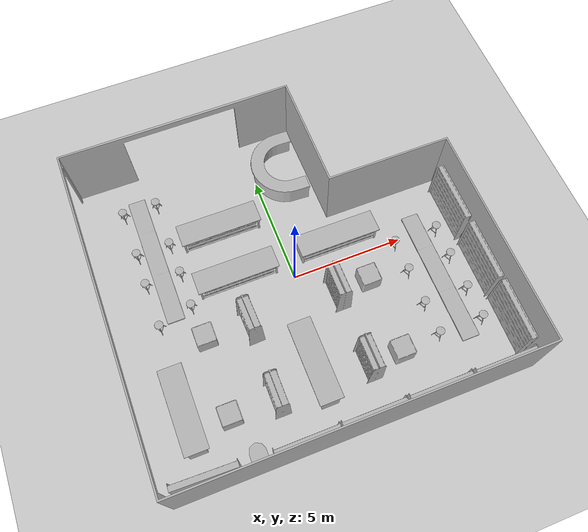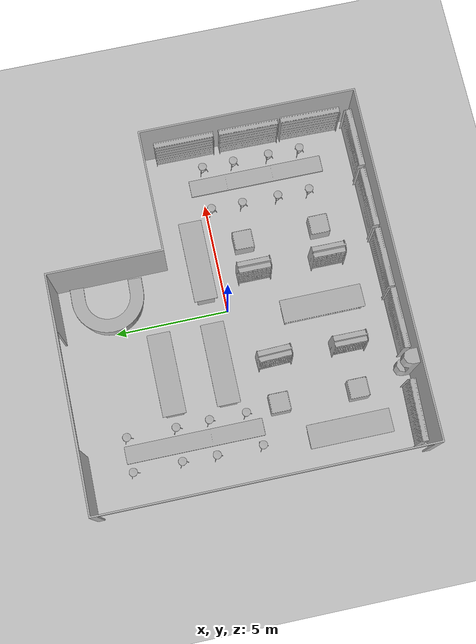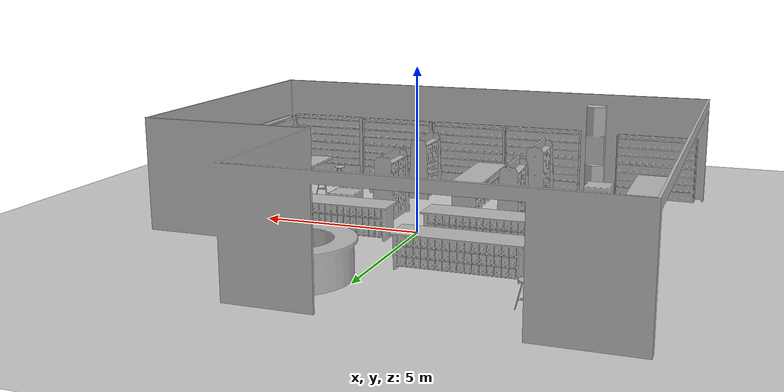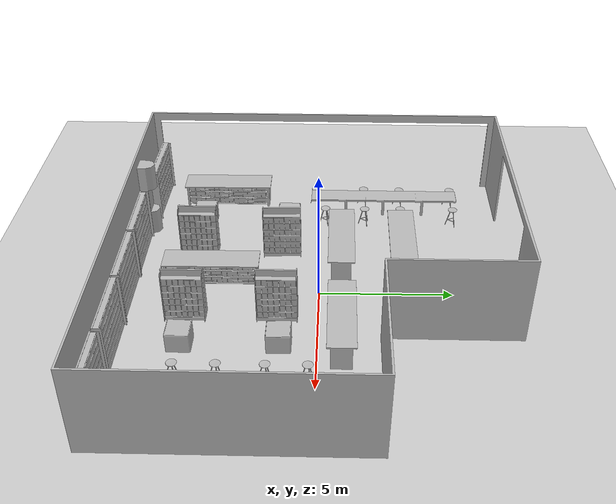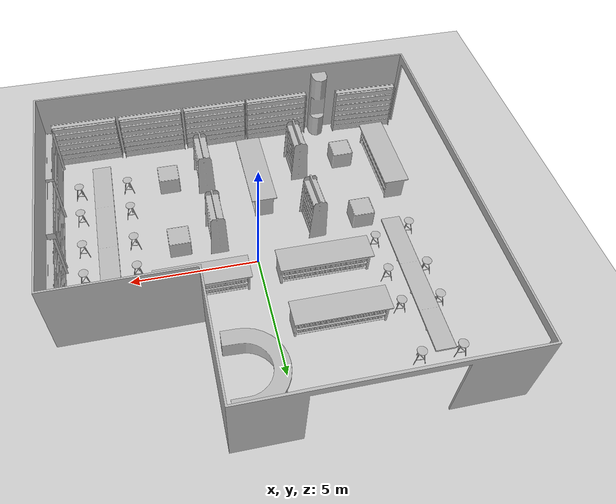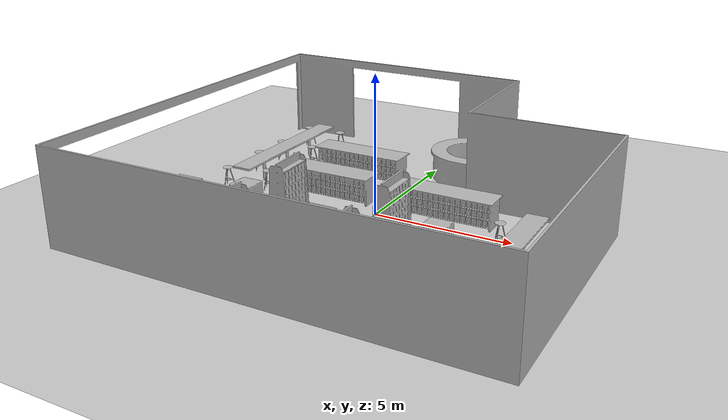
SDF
<sdf version="1.6">
 <world name="default">
  <gravity>0 0 -9.8</gravity>
  <magnetic_field>6e-06 2.3e-05 -4.2e-05</magnetic_field>
  <atmosphere type="adiabatic"/>
  <physics default="0" name="default_physics" type="ode">
   <max_step_size>0.001</max_step_size>
   <real_time_factor>1</real_time_factor>
   <real_time_update_rate>1000</real_time_update_rate>
  </physics>
  <scene>
   <ambient>0.4 0.4 0.4 1</ambient>
   <background>0.7 0.7 0.7 1</background>
   <shadows>1</shadows>
   <grid>false</grid>
   <origin_visual>false</origin_visual>
  </scene>
  <spherical_coordinates>
   <surface_model>EARTH_WGS84</surface_model>
   <latitude_deg>0</latitude_deg>
   <longitude_deg>0</longitude_deg>
   <elevation>0</elevation>
   <heading_deg>0</heading_deg>
  </spherical_coordinates>
  <include><uri>model://ground_plane</uri></include>
  <model name="BookshelfA_01_001">
   <include><uri>model://aws_robomaker_retail_BookshelfA_01_simple</uri></include>
   <pose>1.405153 -1.449740 0.03755 0.003490 -0.000003 0.000696</pose>
  </model>
  <model name="BookshelfA_01_002">
   <include><uri>model://aws_robomaker_retail_BookshelfA_01_simple</uri></include>
   <pose>1.405153 -4.761649 0.003411 0 0 0</pose>
  </model>
  <model name="BookshelfA_01_003">
   <include><uri>model://aws_robomaker_retail_BookshelfA_01_simple</uri></include>
   <pose>-2.554493 -1.487456 0.006337 0.001313 -0.001987 0.031824</pose>
  </model>
  <model name="BookshelfA_01_004">
   <include><uri>model://aws_robomaker_retail_BookshelfA_01_simple</uri></include>
   <pose>-2.608578 -4.761649 0.003411 0 0 0</pose>
  </model>
  <model name="BookshelfB_01_001">
   <include><uri>model://aws_robomaker_retail_BookshelfB_01_simple</uri></include>
   <pose>-6.189675 -6.785646 -0.008942 0.003533 0.000121 -0.032073</pose>
  </model>
  <model name="BookshelfB_01_002">
   <include><uri>model://aws_robomaker_retail_BookshelfB_01_simple</uri></include>
   <pose>-2.209411 -6.971459 0.017074 -0.000128 -0.000252 0.000364</pose>
  </model>
  <model name="BookshelfB_01_003">
   <include><uri>model://aws_robomaker_retail_BookshelfB_01_simple</uri></include>
   <pose>0.522246 -6.971500 0.017947 -0.003292 0.000000 0.000000</pose>
  </model>
  <model name="BookshelfB_01_004">
   <include><uri>model://aws_robomaker_retail_BookshelfB_01_simple</uri></include>
   <pose>3.293386 -6.963665 0.017383 0.000008 -0.000002 0.000000</pose>
  </model>
  <model name="BookshelfB_01_005">
   <include><uri>model://aws_robomaker_retail_BookshelfB_01_simple</uri></include>
   <pose>6.080380 -6.987659 0.017409 0.000174 0.000004 0.000000</pose>
  </model>
  <model name="BookshelfB_01_006">
   <include><uri>model://aws_robomaker_retail_BookshelfB_01_simple</uri></include>
   <pose>7.478331 -5.298296 0.017443 -0.001974 -0.000211 1.554057</pose>
  </model>
  <model name="BookshelfB_01_007">
   <include><uri>model://aws_robomaker_retail_BookshelfB_01_simple</uri></include>
   <pose>7.478331 -2.510651 0.017402 0.000010 -0.000013 1.562068</pose>
  </model>
  <model name="BookshelfB_01_008">
   <include><uri>model://aws_robomaker_retail_BookshelfB_01_simple</uri></include>
   <pose>7.478331 0.402539 0.017181 0.000003 -0.000156 1.570798</pose>
  </model>
  <model name="BookshelfC_01_001">
   <include><uri>model://aws_robomaker_retail_BookshelfC_01_simple</uri></include>
   <pose>2.911133 -1.310229 0.008469 0.003452 -0.000003 0.000620</pose>
  </model>
  <model name="BookshelfC_01_002">
   <include><uri>model://aws_robomaker_retail_BookshelfC_01_simple</uri></include>
   <pose>2.915449 -4.761712 -0.003455 0.003452 0 0.000014</pose>
  </model>
  <model name="BookshelfC_01_003">
   <include><uri>model://aws_robomaker_retail_BookshelfC_01_simple</uri></include>
   <pose>-4.517110 -1.310229 0.045908 0 0 0</pose>
  </model>
  <model name="BookshelfC_01_004">
   <include><uri>model://aws_robomaker_retail_BookshelfC_01_simple</uri></include>
   <pose>-4.614360 -4.761649 0.045908 0 0 0</pose>
  </model>
  <model name="ChairB_01_001">
   <include><uri>model://aws_robomaker_retail_ChairB_01_simple</uri></include>
   <pose>6.6439554 -0.210457 0.0220513 0 0.006174 0.000088</pose>
  </model>
  <model name="ChairB_01_002">
   <include><uri>model://aws_robomaker_retail_ChairB_01_simple</uri></include>
   <pose>6.6439554 -1.621987 0.0220513 0 0.006174 0.000088</pose>
  </model>
  <model name="ChairB_01_003">
   <include><uri>model://aws_robomaker_retail_ChairB_01_simple</uri></include>
   <pose>6.6439554 -3.246633 0.0220513 0 0.006174 0.000088</pose>
  </model>
  <model name="ChairB_01_004">
   <include><uri>model://aws_robomaker_retail_ChairB_01_simple</uri></include>
   <pose>6.6439554 -4.681600 0.0220513 0 0.006174 0.000088</pose>
  </model>
  <model name="ChairB_01_005">
   <include><uri>model://aws_robomaker_retail_ChairB_01_simple</uri></include>
   <pose>4.653303 -0.210457 0.0220513 0 0.006174 0.000088</pose>
  </model>
  <model name="ChairB_01_006">
   <include><uri>model://aws_robomaker_retail_ChairB_01_simple</uri></include>
   <pose>4.653303 -1.621987 0.0220513 0 0.006174 0.000088</pose>
  </model>
  <model name="ChairB_01_007">
   <include><uri>model://aws_robomaker_retail_ChairB_01_simple</uri></include>
   <pose>4.653303 -3.246633 0.0220513 0 0.006174 0.000088</pose>
  </model>
  <model name="ChairB_01_008">
   <include><uri>model://aws_robomaker_retail_ChairB_01_simple</uri></include>
   <pose>4.653303 -4.681600 0.0220513 0 0.006174 0.000088</pose>
  </model>
  <model name="ChairB_01_009">
   <include><uri>model://aws_robomaker_retail_ChairB_01_simple</uri></include>
   <pose>-4.602947 5.421919 0.030259 -0.001073 -0.001935 0.001439</pose>
  </model>
  <model name="ChairB_01_010">
   <include><uri>model://aws_robomaker_retail_ChairB_01_simple</uri></include>
   <pose>-6.109693 5.426245 0.027274 -0.001422 -0.002424 0.000176</pose>
  </model>
  <model name="ChairB_01_011">
   <include><uri>model://aws_robomaker_retail_ChairB_01_simple</uri></include>
   <pose>-4.616166 3.276753 0.0321 -0.001068 -0.001938 0.000117</pose>
  </model>
  <model name="ChairB_01_012">
   <include><uri>model://aws_robomaker_retail_ChairB_01_simple</uri></include>
   <pose>-6.090762 3.293415 0.029216 -0.001072 -0.001936 0.000119</pose>
  </model>
  <model name="ChairB_01_013">
   <include><uri>model://aws_robomaker_retail_ChairB_01_simple</uri></include>
   <pose>-4.589604 1.815766 0.032459 0.001362 -0.001944 0.000145</pose>
  </model>
  <model name="ChairB_01_014">
   <include><uri>model://aws_robomaker_retail_ChairB_01_simple</uri></include>
   <pose>-6.130103 1.798599 0.02944 0.001362 -0.001946 0.000105</pose>
  </model>
  <model name="ChairB_01_015">
   <include><uri>model://aws_robomaker_retail_ChairB_01_simple</uri></include>
   <pose>-4.607505 0.203637 0.030218 0.001362 -0.001944 0.000163</pose>
  </model>
  <model name="ChairB_01_016">
   <include><uri>model://aws_robomaker_retail_ChairB_01_simple</uri></include>
   <pose>-6.121492 -0.21 0.027272 0.001357 -0.001950 0.003291</pose>
  </model>
  <model name="ColumnB_01_002">
   <include><uri>model://aws_robomaker_retail_ColumnB_01_simple</uri></include>
   <pose>-4.076233 -6.860710 0.017511 0.001895 -0.000628 -0.003755</pose>
  </model>
  <model name="InfoDesk_01_001">
   <include><uri>model://aws_robomaker_retail_InfoDesk_01_simple</uri></include>
   <pose>1.010668 5.032576 0.011585 -0.006739 0.005110 -0.025146</pose>
  </model>
  <model name="DeskB_01_001">
   <include><uri>model://aws_robomaker_retail_DeskB_01_simple</uri></include>
   <pose>5.622942 -2.475419 -0.181282 0 -0 0</pose>
  </model>
  <model name="DeskB_01_002">
   <include><uri>model://aws_robomaker_retail_DeskB_01_simple</uri></include>
   <pose>-5.400709 2.580536 -0.181282 0 -0 0</pose>
  </model>
  <model name="DeskA_01_001">
   <include><uri>model://aws_robomaker_retail_DeskA_01_simple</uri></include>
   <pose>-2.340694 3.200118 0.014921 0.000124 -0.000010 0.000376</pose>
  </model>
  <model name="DeskA_01_002">
   <include><uri>model://aws_robomaker_retail_DeskA_01_simple</uri></include>
   <pose>-2.369938 0.836099 0.00876 -0.000772 -0.001938 0.000017</pose>
  </model>
  <model name="DeskA_01_003">
   <include><uri>model://aws_robomaker_retail_DeskA_01_simple</uri></include>
   <pose>-6.254654 -3.979197 -0.004603 0.001948 0.001361 -1.569567</pose>
  </model>
  <model name="DeskA_01_004">
   <include><uri>model://aws_robomaker_retail_DeskA_01_simple</uri></include>
   <pose>-0.701688 -4.049294 0.014866 0.000000 -0.000000 -1.566097</pose>
  </model>
  <model name="DeskA_01_005">
   <include><uri>model://aws_robomaker_retail_DeskA_01_simple</uri></include>
   <pose>2.298197 0.861754 0.014883 -0.000002 0.003451 0.000024</pose>
  </model>
  <model name="RetailShopWall_01_001">
   <include><uri>model://aws_robomaker_retail_RetailShopWall_01_simple</uri></include>
   <pose>0 0 -0.281282 0 -0 0</pose>
  </model>
  <light name="RetailShop_CeilingLight_001" type="point">
   <pose>2.774418 -3.628150 3.178466 0 -0 0</pose>
   <diffuse>0.5 0.5 0.5 1</diffuse>
   <specular>0.1 0.1 0.1 1</specular>
   <attenuation>
    <range>20</range>
    <constant>0.32</constant>
    <linear>0.01</linear>
    <quadratic>0.03</quadratic>
   </attenuation>
   <cast_shadows>0</cast_shadows>
   <direction>0 0 -1</direction>
  </light>
  <light name="RetailShop_CeilingLight_002" type="point">
   <pose>5.383991 -5.383710 3.178466 0 -0 0</pose>
   <diffuse>0.5 0.5 0.5 1</diffuse>
   <specular>0.1 0.1 0.1 1</specular>
   <attenuation>
    <range>20</range>
    <constant>0.32</constant>
    <linear>0.01</linear>
    <quadratic>0.03</quadratic>
   </attenuation>
   <cast_shadows>0</cast_shadows>
   <direction>0 0 -1</direction>
  </light>
  <light name="RetailShop_CeilingLight_003" type="point">
   <pose>5.383991 0.041920 3.178466 0 -0 0</pose>
   <diffuse>0.5 0.5 0.5 1</diffuse>
   <specular>0.1 0.1 0.1 1</specular>
   <attenuation>
    <range>20</range>
    <constant>0.32</constant>
    <linear>0.01</linear>
    <quadratic>0.03</quadratic>
   </attenuation>
   <cast_shadows>0</cast_shadows>
   <direction>0 0 -1</direction>
  </light>
  <light name="RetailShop_CeilingLight_004" type="point">
   <pose>-3.210668 -5.383710 3.178466 0 -0 0</pose>
   <diffuse>0.5 0.5 0.5 1</diffuse>
   <specular>0.1 0.1 0.1 1</specular>
   <attenuation>
    <range>20</range>
    <constant>0.32</constant>
    <linear>0.01</linear>
    <quadratic>0.03</quadratic>
   </attenuation>
   <cast_shadows>0</cast_shadows>
   <direction>0 0 -1</direction>
  </light>
  <light name="RetailShop_CeilingLight_005" type="point">
   <pose>-3.271001 2.685925 3.178466 0 -0 0</pose>
   <diffuse>0.5 0.5 0.5 1</diffuse>
   <specular>0.1 0.1 0.1 1</specular>
   <attenuation>
    <range>20</range>
    <constant>0.32</constant>
    <linear>0.01</linear>
    <quadratic>0.03</quadratic>
   </attenuation>
   <cast_shadows>0</cast_shadows>
   <direction>0 0 -1</direction>
  </light>
  <light name="RetailShop_CeilingLight_006" type="point">
   <pose>1.493200 4.692372 3.178466 0 -0 0</pose>
   <diffuse>0.5 0.5 0.5 1</diffuse>
   <specular>0.1 0.1 0.1 1</specular>
   <attenuation>
    <range>20</range>
    <constant>0.32</constant>
    <linear>0.01</linear>
    <quadratic>0.03</quadratic>
   </attenuation>
   <cast_shadows>0</cast_shadows>
   <direction>0 0 -1</direction>
  </light>
  <plugin filename="libcollision_map_creator.so" name="collision_map_creator"/>
 </world>
</sdf>

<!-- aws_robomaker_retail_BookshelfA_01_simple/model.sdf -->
<sdf version="1.6">
  <model name="aws_robomaker_retail_BookshelfA_01_simple">
    <link name="link">
      <inertial>
        <mass>50</mass>
        <inertia>
          <ixx>27.734059</ixx>
          <ixy>0</ixy>
          <ixz>0</ixz>
          <iyy>20.9360858</iyy>
          <iyz>0</iyz>
          <izz>11.359616</izz>
        </inertia>
      </inertial>
      <collision name="collision">
        <pose>0.0 0.0 1.0 0 0 0 </pose>
        <geometry>
          <box>
            <size>0.7 1.46 2.1</size>
          </box>
        </geometry>
      </collision>
      <visual name="visual">
	    <geometry>
          <mesh>
            <uri>file://models/aws_robomaker_retail_BookshelfA_01/meshes/aws_BookshelfA_01_visual.DAE</uri>
          </mesh>
        </geometry>
        <meta>
          <layer>1</layer>
        </meta>
      </visual>
    </link>
  <static>1</static>
  </model>
</sdf>

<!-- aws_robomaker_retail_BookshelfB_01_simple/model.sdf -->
<sdf version="1.6">
  <model name="aws_robomaker_retail_BookshelfB_01_simple">
    <link name="link">
      <inertial>
        <mass>50</mass>
        <inertia>
          <ixx>19.87420</ixx>
          <ixy>0</ixy>
          <ixz>0</ixz>
          <iyy>49.12631347041</iyy>
          <iyz>0</iyz>
          <izz>30.223050</izz>
        </inertia>
      </inertial>
      <collision name="collision">
        <pose>0.0 0.0 1.0 0 0 0 </pose>
        <geometry>
          <box>
            <size>2.7 0.35 2.2</size>
          </box>
        </geometry>
      </collision>
      <visual name="visual">
	    <geometry>
          <mesh>
            <uri>file://models/aws_robomaker_retail_BookshelfB_01/meshes/aws_BookshelfB_01_visual.DAE</uri>
          </mesh>
        </geometry>
        <meta>
          <layer>1</layer>
        </meta>
      </visual>
    </link>
  <static>1</static>
  </model>
</sdf>

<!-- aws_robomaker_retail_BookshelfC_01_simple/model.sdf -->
<sdf version="1.6">
  <model name="aws_robomaker_retail_BookshelfC_01_simple">
    <link name="link">
      <inertial>
        <mass>50</mass>
        <inertia>
          <ixx>5.586498</ixx>
          <ixy>0</ixy>
          <ixz>0</ixz>
          <iyy>5.4732378</iyy>
          <iyz>0</iyz>
          <izz>6.232767</izz>
        </inertia>
      </inertial>
      <collision name="collision">
        <pose>0.0 0.0 0.4 0 0 0 </pose>
        <geometry>
          <box>
            <size>0.86 0.86 0.8</size>
          </box>
        </geometry>
      </collision>
      <visual name="visual">
	    <geometry>
          <mesh>
            <uri>file://models/aws_robomaker_retail_BookshelfC_01/meshes/aws_BookshelfC_01_visual.DAE</uri>
          </mesh>
        </geometry>
        <meta>
          <layer>1</layer>
        </meta>
      </visual>
    </link>
  <static>1</static>
  </model>
</sdf>

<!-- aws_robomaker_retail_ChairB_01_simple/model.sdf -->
<sdf version="1.6">
  <model name="aws_robomaker_retail_ChairB_01_simple">
    <link name="link">
      <inertial>
        <mass>3</mass>
        <inertia>
          <ixx>0.188185</ixx>
          <ixy>0</ixy>
          <ixz>0</ixz>
          <iyy>0.1906168</iyy>
          <iyz>0</iyz>
          <izz>0.10099930</izz>
        </inertia>
      </inertial>
      <collision name="collision">
        <pose>0.0 0.0 0.325 0 0 0 </pose>
        <geometry>
          <box>
            <size>0.4 0.4 0.75</size>
          </box>
        </geometry>
      </collision>
      <visual name="visual">
	    <geometry>
          <mesh>
            <uri>file://models/aws_robomaker_retail_ChairB_01/meshes/aws_ChairB_01_visual.DAE</uri>
          </mesh>
        </geometry>
        <meta>
          <layer>1</layer>
        </meta>
      </visual>
</link>
      <static>1</static>
  </model>
</sdf>

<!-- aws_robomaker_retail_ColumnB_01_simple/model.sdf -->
<sdf version="1.6">
  <model name="aws_robomaker_retail_ColumnB_01_simple">
    <link name="link">
      <inertial>
        <mass>50</mass>
        <inertia>
          <ixx>44.5597233</ixx>
          <ixy>0</ixy>
          <ixz>0</ixz>
          <iyy>44.5597233</iyy>
          <iyz>0</iyz>
          <izz>1.8794166</izz>
        </inertia>
      </inertial>
      <collision name="collision">
        <pose>0.0 0.0 1.5 0 0 0 </pose>
        <geometry>
          <box>
            <size>0.55 0.55 3.0</size>
          </box>
        </geometry>
      </collision>
      <visual name="visual">
	    <geometry>
          <mesh>
            <uri>file://models/aws_robomaker_retail_ColumnB_01/meshes/aws_ColumnB_01_visual.DAE</uri>
          </mesh>
        </geometry>
        <meta>
          <layer>1</layer>
        </meta>
      </visual>
    </link>
      <static>1</static>
  </model>
</sdf>

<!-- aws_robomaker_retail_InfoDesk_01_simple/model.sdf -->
<sdf version="1.6">
  <model name="aws_robomaker_retail_InfoDesk_01_simple">
    <link name="link">
      <inertial>
        <mass>50</mass>
        <inertia>
          <ixx>47.838601</ixx>
          <ixy>0</ixy>
          <ixz>0</ixz>
          <iyy>25.37052</iyy>
          <iyz>0</iyz>
          <izz>63.5798181</izz>
        </inertia>
      </inertial>
      <collision name="collision">
        <pose>0.5 0.0 0.55 0 0 0 </pose>
        <geometry>
          <cylinder>
            <radius>1.54</radius>
            <length>1.1</length>
          </cylinder>
        </geometry>
      </collision>
      <visual name="visual">
	    <geometry>
          <mesh>
            <uri>file://models/aws_robomaker_retail_InfoDesk_01/meshes/aws_InfoDesk_01_visual.DAE</uri>
          </mesh>
        </geometry>
        <meta>
          <layer>1</layer>
        </meta>
      </visual>
    </link>
		<static>1</static>
  </model>
</sdf>

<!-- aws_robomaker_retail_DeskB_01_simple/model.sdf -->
<sdf version="1.6">
  <model name="aws_robomaker_retail_DeskB_01_simple">
    <link name="link">
      <inertial>
        <mass>50</mass>
        <inertia>
          <ixx>154.88378004</ixx>
          <ixy>0</ixy>
          <ixz>0</ixz>
          <iyy>7.484241145</iyy>
          <iyz>0</iyz>
          <izz>152.098671</izz>
        </inertia>
      </inertial>
      <collision name="collision">
        <pose>0.0 0.0 0.575 0 0 0 </pose>
        <geometry>
          <box>
            <size>0.77 6.0 1.15</size>
          </box>
        </geometry>
      </collision>
      <visual name="visual">
	    <geometry>
          <mesh>
            <uri>file://models/aws_robomaker_retail_DeskB_01/meshes/aws_DeskB_01_visual.DAE</uri>
          </mesh>
        </geometry>
        <meta>
          <layer>1</layer>
        </meta>
      </visual>
    </link>
    <static>1</static>
  </model>
</sdf>

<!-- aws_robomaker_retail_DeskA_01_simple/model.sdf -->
<sdf version="1.6">
  <model name="aws_robomaker_retail_DeskA_01_simple">
    <link name="link">
      <inertial>
        <mass>20</mass>
        <inertia>
          <ixx>3.49717266</ixx>
          <ixy>0</ixy>
          <ixz>0</ixz>
          <iyy>23.5598501</iyy>
          <iyz>0</iyz>
          <izz>23.570161273</izz>
        </inertia>
      </inertial>
      <collision name="collision">
        <pose>0.0 0.0 0.525 0 0 0 </pose>
        <geometry>
          <box>
            <size>3.6 1.05 1.05</size>
          </box>
        </geometry>
      </collision>
      <visual name="visual">
	    <geometry>
          <mesh>
            <uri>file://models/aws_robomaker_retail_DeskA_01/meshes/aws_DeskA_01_visual.DAE</uri>
          </mesh>
        </geometry>
        <meta>
          <layer>1</layer>
        </meta>
      </visual>
    </link>
	<static>1</static>
  </model>
</sdf>

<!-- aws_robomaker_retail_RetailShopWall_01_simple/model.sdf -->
<sdf version="1.6">
  <model name="aws_robomaker_retail_RetailShopWall_01_simple">
    <link name="link">
      <inertial>
        <mass>1</mass>
      </inertial>
      <collision name="collision">
        <pose>7.8 0.0 1.5 0 0 0 </pose>
        <geometry>
          <box>
            <size>0.1 15.2 3.0</size>
          </box>
        </geometry>
      </collision>
      <collision name="collision2">
        <pose>-7.8 0.0 1.5 0 0 0 </pose>
        <geometry>
          <box>
            <size>0.1 15.2 3.0</size>
          </box>
        </geometry>
      </collision>
      <collision name="collision3">
        <pose>2.45 4.8 1.5 0 0 0 </pose>
        <geometry>
          <box>
            <size>0.1 5.2 3.0</size>
          </box>
        </geometry>
      </collision>
      <collision name="collision4">
        <pose>0.0 7.30 1.5 0 0 0 </pose>
        <geometry>
          <box>
            <size>15.35 0.1 3.0</size>
          </box>
        </geometry>
      </collision>
      <collision name="collision5">
        <pose>0.0 -7.30 1.5 0 0 0 </pose>
        <geometry>
          <box>
            <size>15.35 0.1 3.0</size>
          </box>
        </geometry>
      </collision>
      <collision name="collision6">
        <pose>5.05 2.25 1.5 0 0 0 </pose>
        <geometry>
          <box>
            <size>5.3 0.1 3.0</size>
          </box>
        </geometry>
      </collision>
      <visual name="visual">
	    <geometry>
          <mesh>
            <uri>file://models/aws_robomaker_retail_RetailShopWall_01/meshes/aws_RetailShopWall_01_visual.DAE</uri>
          </mesh>
        </geometry>
        <meta>
          <layer>2</layer>
        </meta>
      </visual>
    </link>
	<static>1</static>
  </model>
</sdf>
